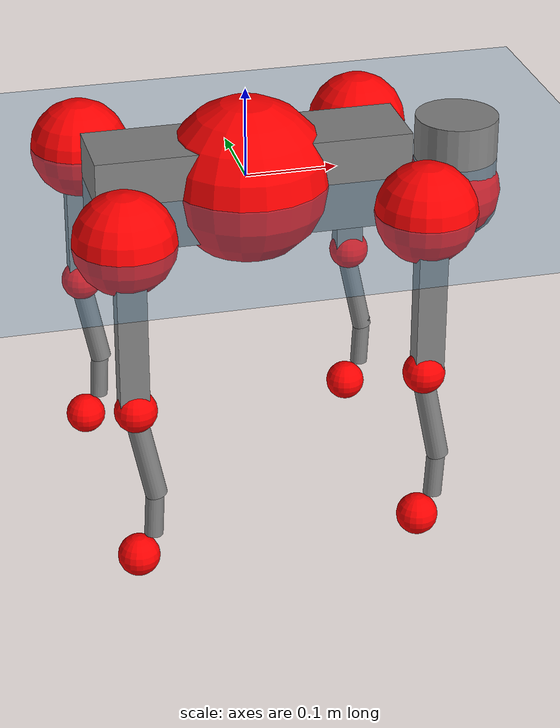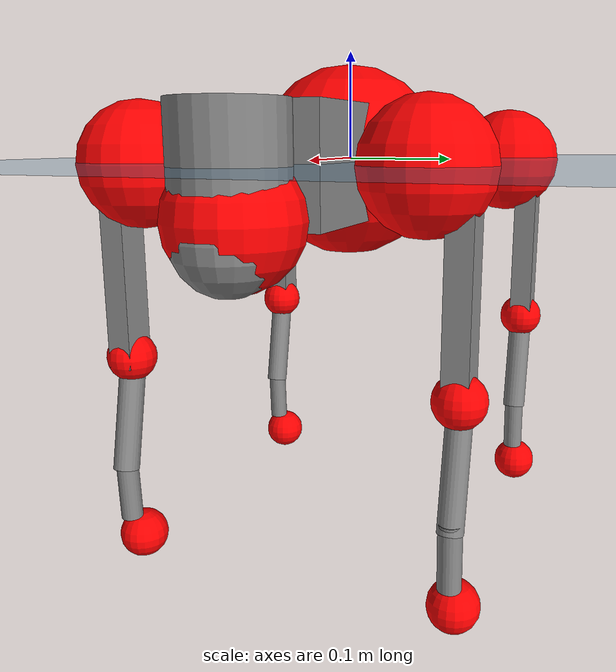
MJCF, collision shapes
<mujoco model="go2">
  <compiler angle="radian" assetdir="assets" balanceinertia="true" inertiafromgeom="false"/>

  <option timestep="0.005" density="1.2" viscosity="2e-05"/>

  <size nkey="1"/>

  <visual>
    <quality shadowsize="8192"/>
    <map shadowclip="0.5"/>
  </visual>

  <default>
    <default class="/">
      <geom contype="0" conaffinity="0" group="1" solref="-1000 -80"/>
      <site size="0.01 0.005 0.005" group="5"/>
      <general forcelimited="true" biastype="affine" gainprm="20" biasprm="0 -20 -0.5"/>
      <default class="go2">
        <joint armature="0.01" damping="0.01" frictionloss="0.2"/>
        <geom condim="1" margin="0.001"/>
        <default class="visual">
          <geom type="mesh" group="2"/>
        </default>
        <default class="collision">
          <geom group="3"/>
          <default class="foot">
            <geom size="0.022 0 0" condim="6" priority="1" friction="0.8 0.02 0.01" solimp="0.015 1 0.022"/>
          </default>
        </default>
        <default class="reward_collision_sphere">
          <geom group="5" rgba="1 0 0 1"/>
        </default>
      </default>
    </default>
  </default>

  <asset>
    <texture type="skybox" colorspace="auto" name="//unnamed_texture_0" builtin="gradient" rgb1="0.95 0.95 0.95" rgb2="0.95 0.95 0.95" width="100" height="600"/>
    <texture type="2d" colorspace="auto" name="texplane" builtin="checker" rgb1="0.345 0.575 0.748" rgb2="0.345 0.575 0.748" markrgb="1 1 1" width="512" height="512"/>
    <material name="MatPlane" class="/" texture="texplane" texuniform="true" texrepeat="2 2" specular="0.9"/>
    <material name="metal" class="/" rgba="0.9 0.95 0.95 1"/>
    <material name="black" class="/" rgba="0 0 0 1"/>
    <material name="white" class="/"/>
    <material name="gray" class="/" rgba="0.671705 0.692426 0.77427 1"/>
    <mesh name="base_0" class="/" file="base_0.obj"/>
    <mesh name="base_1" class="/" file="base_1.obj"/>
    <mesh name="base_2" class="/" file="base_2.obj"/>
    <mesh name="base_3" class="/" file="base_3.obj"/>
    <mesh name="base_4" class="/" file="base_4.obj"/>
    <mesh name="hip_0" class="/" file="hip_0.obj"/>
    <mesh name="hip_1" class="/" file="hip_1.obj"/>
    <mesh name="thigh_0" class="/" file="thigh_0.obj"/>
    <mesh name="thigh_1" class="/" file="thigh_1.obj"/>
    <mesh name="thigh_mirror_0" class="/" file="thigh_mirror_0.obj"/>
    <mesh name="thigh_mirror_1" class="/" file="thigh_mirror_1.obj"/>
    <mesh name="calf_0" class="/" file="calf_0.obj"/>
    <mesh name="calf_1" class="/" file="calf_1.obj"/>
    <mesh name="calf_mirror_0" class="/" file="calf_mirror_0.obj"/>
    <mesh name="calf_mirror_1" class="/" file="calf_mirror_1.obj"/>
    <mesh name="foot" class="/" file="foot.obj"/>
  </asset>

  <worldbody>
    <geom name="floor" class="/" size="100 100 0.125" type="plane" group="0" material="MatPlane"/>
    <light name="toplight_shadow" class="/" pos="0 0 5" dir="0.0990148 0.0990148 -0.990148" type="directional" ambient="0.04 0.04 0.04" diffuse="0.55 0.55 0.55" specular="0.12 0.12 0.12"/>
    <light name="toplight_fill" class="/" pos="0 0 5" dir="0.0990148 0.0990148 -0.990148" type="directional" castshadow="false" ambient="0.04 0.04 0.04" diffuse="0.3 0.3 0.3" specular="0.08 0.08 0.08"/>
    <body name="trunk" childclass="go2" pos="0.000926454 -0.00133463 -0.00265618" quat="1 0.000599398 -0.000226631 0.0001023">
      <inertial pos="0.015133 0.00240396 -0.00361199" quat="-0.00252919 0.715977 -0.0113147 0.698028" mass="5.4522" diaginertia="0.0429541 0.14574 0.0105282"/>
      <joint name="//unnamed_joint_0" type="free" armature="0" damping="0" frictionloss="0"/>
      <geom name="//unnamed_geom_1" class="visual" material="black" mesh="base_0"/>
      <geom name="//unnamed_geom_2" class="visual" material="black" mesh="base_1"/>
      <geom name="//unnamed_geom_3" class="visual" material="black" mesh="base_2"/>
      <geom name="//unnamed_geom_4" class="visual" material="white" mesh="base_3"/>
      <geom name="//unnamed_geom_5" class="visual" material="gray" mesh="base_4"/>
      <geom name="trunk_1" class="collision" size="0.17188 0.0427187 0.0520849" type="box"/>
      <geom name="trunk_2" class="collision" size="0.0456885 0.0411196" pos="0.234851 0 0.00840639" type="cylinder"/>
      <geom name="trunk_3" class="collision" size="0.0429472" pos="0.241444 0 -0.0504383"/>
      <geom name="//unnamed_geom_9" class="reward_collision_sphere" size="0.091377"/>
      <geom name="//unnamed_geom_10" class="reward_collision_sphere" size="0.0548262" pos="0.230731 0 -0.0378288"/>
      <site name="imu" pos="-0.0246367 -0.000764981 0.0347164" size="0.0091377"/>
      <camera name="track" pos="0 -2.15326 0" quat="0.707107 0.707107 0 0" mode="trackcom"/>
      <camera name="ego_camera" pos="0.2571 0 0.0378288" quat="-0.5 -0.5 0.5 0.5"/>
      <body name="FL_hip" pos="0.15784 0.0488801 0.000475833" quat="1 -0.000346484 -8.53484e-05 -4.30768e-05">
        <inertial pos="-0.0036762 0.00227474 -0.000414042" quat="0.50488 0.494438 0.513904 0.486344" mass="0.525773" diaginertia="0.000344853 0.000857869 0.000207856"/>
        <joint name="FL_hip_joint" pos="0 0 0" axis="0.999959 0.00757223 -0.00504052" range="-1.09435 1.0124" armature="0.00933867" damping="0.0211526" frictionloss="0.19034"/>
        <geom name="//unnamed_geom_11" class="visual" material="metal" mesh="hip_0"/>
        <geom name="//unnamed_geom_12" class="visual" material="gray" mesh="hip_1"/>
        <geom name="//unnamed_geom_13" class="collision" size="0.0420334 0.0182754" pos="0 0.0861304 0" quat="0.707107 0.707107 0 0" type="cylinder"/>
        <geom name="//unnamed_geom_14" class="reward_collision_sphere" size="0.0548262" pos="0 0.0753641 0"/>
        <body name="FL_thigh" pos="9.29489e-05 0.104905 0.00114125" quat="0.999999 -0.000719008 -0.000711606 -0.000918605">
          <inertial pos="-0.00286474 -0.0268558 -0.0284885" quat="0.82687 0.0739081 -0.0247306 0.556966" mass="0.893685" diaginertia="0.00226026 0.00812808 0.000365097"/>
          <joint name="FL_thigh_joint" pos="0 0 0" axis="-0.00565639 0.99998 0.00271958" stiffness="0.0130077" range="-1.59546 3.51982" armature="0.0080538" damping="0.0185461" frictionloss="0.163898"/>
          <geom name="//unnamed_geom_15" class="visual" material="metal" mesh="thigh_0"/>
          <geom name="//unnamed_geom_16" class="visual" material="gray" mesh="thigh_1"/>
          <geom name="//unnamed_geom_17" class="collision" size="0.0973165 0.0111937 0.0155341" pos="0 0 -0.089528" quat="0.707107 0 0.707107 0" type="box"/>
          <body name="FL_calf" pos="0.00229527 0.00148307 -0.181065" quat="1 9.18478e-07 4.63834e-06 -1.16655e-05">
            <inertial pos="0.00604569 -0.0023381 -0.118833" quat="0.718197 0.000519143 0.00353333 0.695831" mass="0.186515" diaginertia="0.000557989 0.00203614 2.1667e-05"/>
            <joint name="FL_calf_joint" pos="0 0 0" axis="-0.00332619 0.999993 0.00157756" stiffness="0.00384281" range="-2.77935 -0.835283" armature="0.00808238" damping="0.00881303" frictionloss="0.207397"/>
            <geom name="//unnamed_geom_18" class="visual" material="gray" mesh="calf_0"/>
            <geom name="//unnamed_geom_19" class="visual" material="black" mesh="calf_1"/>
            <geom name="FL_calf0" class="collision" size="0.0109652 0.0548262" pos="0.00659232 0 -0.0504383" quat="0.994493 0 -0.104807 0" type="cylinder"/>
            <geom name="//unnamed_geom_21" class="collision" size="0.0100515 0.0296975" pos="0.0164808 0 -0.124415" quat="0.999688 0 0.0249974 0" type="cylinder"/>
            <geom name="//unnamed_geom_22" class="visual" pos="0 0 -0.179056" quat="1 0 0 0" material="black" mesh="foot"/>
            <geom name="FL_foot" class="foot" size="0.0167856" pos="-0.00164808 0 -0.179056"/>
            <geom name="//unnamed_geom_24" class="reward_collision_sphere" size="0.0228442"/>
            <geom name="//unnamed_geom_25" class="reward_collision_sphere" size="0.0228442" pos="-0.00164808 0 -0.179056"/>
            <site name="FL_foot" class="foot" pos="-0.00164808 0 -0.179056" size="0.0091377"/>
          </body>
        </body>
      </body>
      <body name="FR_hip" pos="0.161798 -0.0520265 -7.3763e-05" quat="1 -0.000248027 0.000104015 -0.000919331">
        <inertial pos="-0.00522094 0.000736665 -0.00309679" quat="0.495747 0.504658 0.504036 0.495482" mass="0.494362" diaginertia="0.00032789 0.000861776 0.000205925"/>
        <joint name="FR_hip_joint" pos="0 0 0" axis="0.999957 0.00394572 0.0083397" stiffness="0.0185017" range="-1.02847 1.04011" armature="0.00799424" damping="0.0203727" frictionloss="0.206444"/>
        <geom name="//unnamed_geom_26" class="visual" pos="0 2.05586e-09 8.81801e-08" quat="4.63268e-05 1 0 0" material="metal" mesh="hip_0"/>
        <geom name="//unnamed_geom_27" class="visual" pos="0 3.3328e-09 -2.18103e-07" quat="4.63268e-05 1 0 0" material="gray" mesh="hip_1"/>
        <geom name="//unnamed_geom_28" class="collision" size="0.0420334 0.0182754" pos="0 -0.0861304 0" quat="0.707107 0.707107 0 0" type="cylinder"/>
        <geom name="//unnamed_geom_29" class="reward_collision_sphere" size="0.0548262" pos="0 -0.0753641 0"/>
        <body name="FR_thigh" pos="-0.00225313 -0.102977 0.00399735" quat="1 -9.42082e-05 -0.000146964 3.6955e-05">
          <inertial pos="-0.00076394 0.0225877 -0.0290624" quat="0.56229 -0.0217655 0.0804949 0.822725" mass="0.904825" diaginertia="0.00221618 0.00840286 0.000366898"/>
          <joint name="FR_thigh_joint" pos="0 0 0" axis="0.000491359 -1 0.000267851" range="-3.47861 1.61961" armature="0.00956246" damping="0.00367024" frictionloss="0.167462"/>
          <geom name="//unnamed_geom_30" class="visual" material="metal" mesh="thigh_mirror_0"/>
          <geom name="//unnamed_geom_31" class="visual" material="gray" mesh="thigh_mirror_1"/>
          <geom name="//unnamed_geom_32" class="collision" size="0.0973165 0.0111937 0.0155341" pos="0 0 -0.089528" quat="0.707107 0 0.707107 0" type="box"/>
          <body name="FR_calf" pos="-0.0033345 -0.000416487 -0.179283" quat="0.999999 5.82353e-08 0.000789782 -0.00084888">
            <inertial pos="0.00356152 0.00206706 -0.119748" quat="0.698776 0.00058013 0.0115755 0.715247" mass="0.178363" diaginertia="0.000529286 0.00207373 2.10934e-05"/>
            <joint name="FR_calf_joint" pos="0 0 0" axis="0.00751595 -0.99995 -0.00659772" range="0.890321 2.77039" armature="0.00849043" damping="0.01369" frictionloss="0.158249"/>
            <geom name="//unnamed_geom_33" class="visual" material="gray" mesh="calf_mirror_0"/>
            <geom name="//unnamed_geom_34" class="visual" material="black" mesh="calf_mirror_1"/>
            <geom name="FR_calf0" class="collision" size="0.011879 0.0548262" pos="0.0082404 0 -0.0504383" quat="0.995004 0 -0.0998334 0" type="cylinder"/>
            <geom name="//unnamed_geom_36" class="collision" size="0.0100515 0.0296975" pos="0.0164808 0 -0.124415" quat="0.999688 0 0.0249974 0" type="cylinder"/>
            <geom name="//unnamed_geom_37" class="visual" pos="0 0 -0.179056" quat="1 0 0 0" material="black" mesh="foot"/>
            <geom name="FR_foot" class="foot" size="0.0222668" pos="-0.00164808 0 -0.179056"/>
            <geom name="//unnamed_geom_39" class="reward_collision_sphere" size="0.0228442"/>
            <geom name="//unnamed_geom_40" class="reward_collision_sphere" size="0.0228442" pos="-0.00164808 0 -0.179056"/>
            <site name="FR_foot" class="foot" pos="-0.00164808 0 -0.179056" size="0.0091377"/>
          </body>
        </body>
      </body>
      <body name="RL_hip" pos="-0.160389 0.0521982 -0.00159673" quat="1 -0.00024643 0.000219506 0.000306676">
        <inertial pos="0.00640856 0.000381177 0.0016294" quat="0.49579 0.500584 0.502973 0.500626" mass="0.51832" diaginertia="0.00031644 0.000808974 0.000199652"/>
        <joint name="RL_hip_joint" pos="0 0 0" axis="-0.999658 -0.00352166 0.0259089" range="-1.05759 0.990036" armature="0.00809528" damping="0.0144535" frictionloss="0.186986"/>
        <geom name="//unnamed_geom_41" class="visual" pos="1.44605e-10 0 2.83459e-08" quat="4.63268e-05 0 1 0" material="metal" mesh="hip_0"/>
        <geom name="//unnamed_geom_42" class="visual" pos="2.34422e-10 0 2.51388e-08" quat="4.63268e-05 0 1 0" material="gray" mesh="hip_1"/>
        <geom name="//unnamed_geom_43" class="collision" size="0.0420334 0.0182754" pos="0 0.0861304 0" quat="0.707107 0.707107 0 0" type="cylinder"/>
        <geom name="//unnamed_geom_44" class="reward_collision_sphere" size="0.0548262" pos="0 0.0753641 0"/>
        <body name="RL_thigh" pos="0.000473934 0.0997375 0.00250547" quat="1 -0.000568464 -0.000464234 -6.75426e-05">
          <inertial pos="-0.00364701 -0.0274209 -0.0248505" quat="0.830804 0.0856947 -0.0197638 0.549573" mass="0.898944" diaginertia="0.00218897 0.00861296 0.000362895"/>
          <joint name="RL_thigh_joint" pos="0 0 0" axis="-0.00767886 0.999888 -0.0128388" range="-0.546639 4.54877" armature="0.00978961" damping="0.00981208" frictionloss="0.164169"/>
          <geom name="//unnamed_geom_45" class="visual" material="metal" mesh="thigh_0"/>
          <geom name="//unnamed_geom_46" class="visual" material="gray" mesh="thigh_1"/>
          <geom name="//unnamed_geom_47" class="collision" size="0.0973165 0.0111937 0.0155341" pos="0 0 -0.089528" quat="0.707107 0 0.707107 0" type="box"/>
          <body name="RL_calf" pos="-0.00144952 -0.00140549 -0.179114" quat="0.999999 0.000908937 0.000358373 0.000608577">
            <inertial pos="0.00422842 -0.000860643 -0.119513" quat="0.710585 0.00153862 -0.00452786 0.703595" mass="0.181819" diaginertia="0.000571294 0.0021405 2.2673e-05"/>
            <joint name="RL_calf_joint" pos="0 0 0" axis="0.00310617 0.999994 0.00166377" range="-2.77125 -0.856226" armature="0.0078768" damping="0.00956396" frictionloss="0.168809"/>
            <geom name="//unnamed_geom_48" class="visual" material="gray" mesh="calf_0"/>
            <geom name="//unnamed_geom_49" class="visual" material="black" mesh="calf_1"/>
            <geom name="RL_calf0" class="collision" size="0.011879 0.0548262" pos="0.0082404 0 -0.0504383" quat="0.995004 0 -0.0998334 0" type="cylinder"/>
            <geom name="//unnamed_geom_51" class="collision" size="0.0100515 0.0296975" pos="0.0164808 0 -0.124415" quat="0.999688 0 0.0249974 0" type="cylinder"/>
            <geom name="//unnamed_geom_52" class="visual" pos="0 0 -0.179056" quat="1 0 0 0" material="black" mesh="foot"/>
            <geom name="RL_foot" class="foot" size="0.0193979" pos="-0.00164808 0 -0.179056"/>
            <geom name="//unnamed_geom_54" class="reward_collision_sphere" size="0.0228442"/>
            <geom name="//unnamed_geom_55" class="reward_collision_sphere" size="0.0228442" pos="-0.00164808 0 -0.179056"/>
            <site name="RL_foot" class="foot" pos="-0.00164808 0 -0.179056" size="0.0091377"/>
          </body>
        </body>
      </body>
      <body name="RR_hip" pos="-0.157124 -0.0507347 0.0014315" quat="0.999999 -0.00158803 0.000193117 -0.000385576">
        <inertial pos="0.00435633 -0.00457507 -0.00034002" quat="0.502076 0.497984 0.497656 0.502265" mass="0.499346" diaginertia="0.000325946 0.000864809 0.000187462"/>
        <joint name="RR_hip_joint" pos="0 0 0" axis="-0.999999 0.000533094 -0.00132781" range="-1.08696 1.07267" armature="0.00846785" damping="0.00790788" frictionloss="0.198525"/>
        <geom name="//unnamed_geom_56" class="visual" pos="-1.3586e-10 2.05586e-09 -5.98342e-08" quat="2.14617e-09 4.63268e-05 4.63268e-05 -1" material="metal" mesh="hip_0"/>
        <geom name="//unnamed_geom_57" class="visual" pos="-2.56052e-10 3.3328e-09 2.43242e-07" quat="2.14617e-09 4.63268e-05 4.63268e-05 -1" material="gray" mesh="hip_1"/>
        <geom name="//unnamed_geom_58" class="collision" size="0.0420334 0.0182754" pos="0 -0.0861304 0" quat="0.707107 0.707107 0 0" type="cylinder"/>
        <geom name="//unnamed_geom_59" class="reward_collision_sphere" size="0.0548262" pos="0 -0.0753641 0"/>
        <body name="RR_thigh" pos="-0.00123056 -0.102866 -0.00365931" quat="0.999999 0.000920589 -0.00085802 8.06365e-05">
          <inertial pos="-0.00308494 0.0234737 -0.026967" quat="0.547021 -0.0150171 0.0866455 0.832487" mass="0.93428" diaginertia="0.00230091 0.00841111 0.000372831"/>
          <joint name="RR_thigh_joint" pos="0 0 0" axis="0.00297987 -0.999985 -0.00459123" range="-4.54399 0.465966" armature="0.0102597" damping="0.00753815" frictionloss="0.181424"/>
          <geom name="//unnamed_geom_60" class="visual" material="metal" mesh="thigh_mirror_0"/>
          <geom name="//unnamed_geom_61" class="visual" material="gray" mesh="thigh_mirror_1"/>
          <geom name="//unnamed_geom_62" class="collision" size="0.0973165 0.0111937 0.0155341" pos="0 0 -0.089528" quat="0.707107 0 0.707107 0" type="box"/>
          <body name="RR_calf" pos="0.00188775 -0.0010835 -0.177232" quat="1 0.000624011 -0.00019908 0.000203887">
            <inertial pos="0.00302651 0.00183927 -0.119657" quat="0.70426 -0.00391676 0.00329583 0.709924" mass="0.188085" diaginertia="0.000587218 0.00218995 2.2233e-05"/>
            <joint name="RR_calf_joint" pos="0 0 0" axis="0.000379995 -1 6.24173e-05" stiffness="0.00748242" range="0.818979 2.77141" armature="0.00887173" damping="0.00729535" frictionloss="0.201844"/>
            <geom name="//unnamed_geom_63" class="visual" material="gray" mesh="calf_mirror_0"/>
            <geom name="//unnamed_geom_64" class="visual" material="black" mesh="calf_mirror_1"/>
            <geom name="RR_calf0" class="collision" size="0.011879 0.0548262" pos="0.0082404 0 -0.0504383" quat="0.995004 0 -0.0998334 0" type="cylinder"/>
            <geom name="//unnamed_geom_66" class="collision" size="0.0100515 0.0296975" pos="0.0164808 0 -0.124415" quat="0.999688 0 0.0249974 0" type="cylinder"/>
            <geom name="//unnamed_geom_67" class="visual" pos="0 0 -0.179056" quat="1 0 0 0" material="black" mesh="foot"/>
            <geom name="RR_foot" class="foot" size="0.0175624" pos="-0.00164808 0 -0.179056"/>
            <geom name="//unnamed_geom_69" class="reward_collision_sphere" size="0.0228442"/>
            <geom name="//unnamed_geom_70" class="reward_collision_sphere" size="0.0228442" pos="-0.00164808 0 -0.179056"/>
            <site name="RR_foot" class="foot" pos="-0.00164808 0 -0.179056" size="0.0091377"/>
          </body>
        </body>
      </body>
    </body>
  </worldbody>

  <contact>
    <pair class="/" geom1="floor" geom2="FL_foot" name="//unnamed_contact_0"/>
    <pair class="/" geom1="floor" geom2="FR_foot" name="//unnamed_contact_1"/>
    <pair class="/" geom1="floor" geom2="RL_foot" name="//unnamed_contact_2"/>
    <pair class="/" geom1="floor" geom2="RR_foot" name="//unnamed_contact_3"/>
  </contact>

  <actuator>
    <general name="FL_hip" class="/" joint="FL_hip_joint" forcerange="-23.613 23.613" gainprm="18.565" biasprm="0 -18.565 -0.455105"/>
    <general name="FL_thigh" class="/" joint="FL_thigh_joint" forcerange="-22.2449 22.2449" gainprm="18.565" biasprm="0 -18.565 -0.455105"/>
    <general name="FL_calf" class="/" joint="FL_calf_joint" forcerange="-40.7231 40.7231" gainprm="18.565" biasprm="0 -18.565 -0.455105"/>
    <general name="FR_hip" class="/" joint="FR_hip_joint" forcerange="-19.7634 19.7634" gainprm="18.565" biasprm="0 -18.565 -0.455105"/>
    <general name="FR_thigh" class="/" joint="FR_thigh_joint" forcerange="-22.0318 22.0318" gainprm="18.565" biasprm="0 -18.565 -0.455105"/>
    <general name="FR_calf" class="/" joint="FR_calf_joint" forcerange="-40.1011 40.1011" gainprm="18.565" biasprm="0 -18.565 -0.455105"/>
    <general name="RL_hip" class="/" joint="RL_hip_joint" forcerange="-19.5324 19.5324" gainprm="18.565" biasprm="0 -18.565 -0.455105"/>
    <general name="RL_thigh" class="/" joint="RL_thigh_joint" forcerange="-22.3514 22.3514" gainprm="18.565" biasprm="0 -18.565 -0.455105"/>
    <general name="RL_calf" class="/" joint="RL_calf_joint" forcerange="-46.032 46.032" gainprm="18.565" biasprm="0 -18.565 -0.455105"/>
    <general name="RR_hip" class="/" joint="RR_hip_joint" forcerange="-19.7464 19.7464" gainprm="18.565" biasprm="0 -18.565 -0.455105"/>
    <general name="RR_thigh" class="/" joint="RR_thigh_joint" forcerange="-23.7951 23.7951" gainprm="18.565" biasprm="0 -18.565 -0.455105"/>
    <general name="RR_calf" class="/" joint="RR_calf_joint" forcerange="-39.6483 39.6483" gainprm="18.565" biasprm="0 -18.565 -0.455105"/>
  </actuator>

  <sensor>
    <gyro site="imu" name="imu_angular_velocity"/>
    <velocimeter site="imu" name="imu_linear_velocity"/>
    <framelinvel objtype="site" objname="FL_foot" name="FL_foot_global_linear_velocity"/>
    <framelinvel objtype="site" objname="FR_foot" name="FR_foot_global_linear_velocity"/>
    <framelinvel objtype="site" objname="RL_foot" name="RL_foot_global_linear_velocity"/>
    <framelinvel objtype="site" objname="RR_foot" name="RR_foot_global_linear_velocity"/>
  </sensor>

  <keyframe>
    <key name="home" qpos="0 0 0.325 1 0 0 0 0.1 0.8 -1.5 -0.1 -0.8 1.5 -0.1 0.8 -1.5 0.1 -0.8 1.5"/>
  </keyframe>
</mujoco>
